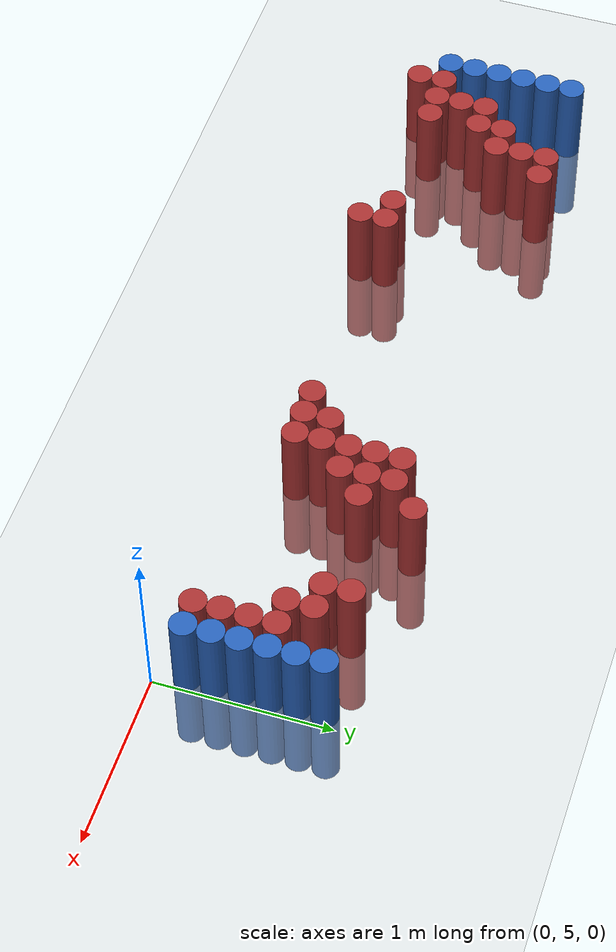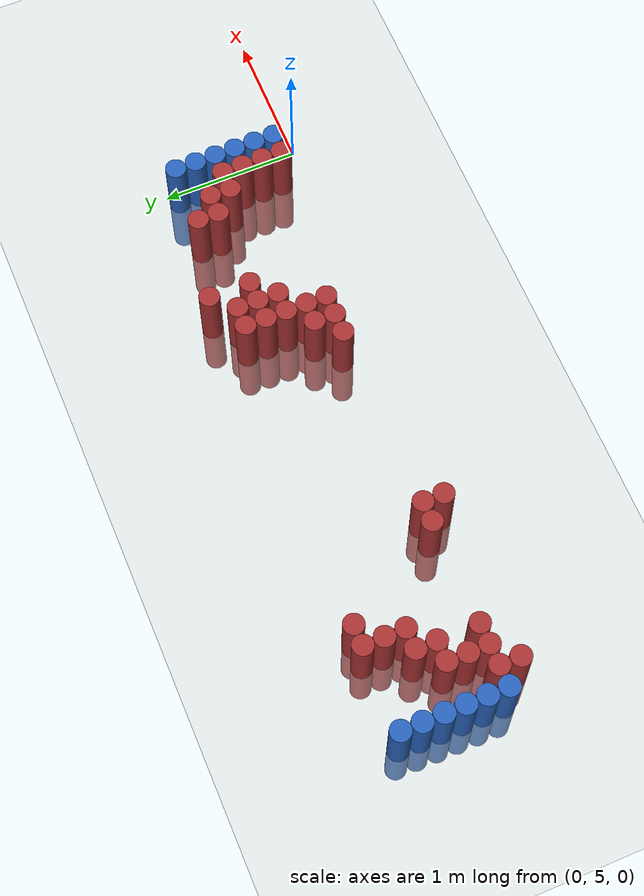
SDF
<sdf version="1.6">
 <world name="default">
  <model name="ground_plane">
   <static>1</static>
   <link name="link">
    <collision name="collision">
     <geometry><plane><normal>0 0 1</normal><size>100 100</size></plane></geometry>
     <surface><friction><ode><mu>100</mu><mu2>50</mu2></ode></friction></surface>
    </collision>
    <visual name="visual">
     <cast_shadows>0</cast_shadows>
     <geometry><plane><normal>0 0 1</normal><size>100 100</size></plane></geometry>
     <material>
      <script><uri>file://media/materials/scripts/gazebo.material</uri><name>Gazebo/Grey</name></script>
     </material>
    </visual>
   </link>
  </model>
  <model name="unit_cylinder_97">
   <static>1</static>
   <pose>-4.425000 5.325000 0.000000 0.000000 0.000000 0.000000</pose>
   <link name="link">
    <inertial>
     <mass>1</mass>
     <inertia><ixx>0.145833</ixx><ixy>0</ixy><ixz>0</ixz><iyy>0.145833</iyy><iyz>0</iyz><izz>0.125</izz></inertia>
    </inertial>
    <collision name="collision">
     <geometry><cylinder><radius>0.075000</radius><length>1</length></cylinder></geometry>
    </collision>
    <visual name="visual">
     <geometry><cylinder><radius>0.075000</radius><length>1</length></cylinder></geometry>
     <material>
      <ambient>0.152000 0.379000 0.720000 1</ambient>
      <diffuse>0.152000 0.379000 0.720000 1</diffuse>
     </material>
     <material>
      <script><name>Gazebo/Grey</name><uri>file://media/materials/scripts/gazebo.material</uri></script>
     </material>
    </visual>
   </link>
  </model>
  <model name="unit_cylinder_98">
   <static>1</static>
   <pose>-4.425000 5.475000 0.000000 0.000000 0.000000 0.000000</pose>
   <link name="link">
    <inertial>
     <mass>1</mass>
     <inertia><ixx>0.145833</ixx><ixy>0</ixy><ixz>0</ixz><iyy>0.145833</iyy><iyz>0</iyz><izz>0.125</izz></inertia>
    </inertial>
    <collision name="collision">
     <geometry><cylinder><radius>0.075000</radius><length>1</length></cylinder></geometry>
    </collision>
    <visual name="visual">
     <geometry><cylinder><radius>0.075000</radius><length>1</length></cylinder></geometry>
     <material>
      <ambient>0.152000 0.379000 0.720000 1</ambient>
      <diffuse>0.152000 0.379000 0.720000 1</diffuse>
     </material>
     <material>
      <script><name>Gazebo/Grey</name><uri>file://media/materials/scripts/gazebo.material</uri></script>
     </material>
    </visual>
   </link>
  </model>
  <model name="unit_cylinder_99">
   <static>1</static>
   <pose>-4.425000 5.625000 0.000000 0.000000 0.000000 0.000000</pose>
   <link name="link">
    <inertial>
     <mass>1</mass>
     <inertia><ixx>0.145833</ixx><ixy>0</ixy><ixz>0</ixz><iyy>0.145833</iyy><iyz>0</iyz><izz>0.125</izz></inertia>
    </inertial>
    <collision name="collision">
     <geometry><cylinder><radius>0.075000</radius><length>1</length></cylinder></geometry>
    </collision>
    <visual name="visual">
     <geometry><cylinder><radius>0.075000</radius><length>1</length></cylinder></geometry>
     <material>
      <ambient>0.152000 0.379000 0.720000 1</ambient>
      <diffuse>0.152000 0.379000 0.720000 1</diffuse>
     </material>
     <material>
      <script><name>Gazebo/Grey</name><uri>file://media/materials/scripts/gazebo.material</uri></script>
     </material>
    </visual>
   </link>
  </model>
  <model name="unit_cylinder_100">
   <static>1</static>
   <pose>-4.425000 5.775000 0.000000 0.000000 0.000000 0.000000</pose>
   <link name="link">
    <inertial>
     <mass>1</mass>
     <inertia><ixx>0.145833</ixx><ixy>0</ixy><ixz>0</ixz><iyy>0.145833</iyy><iyz>0</iyz><izz>0.125</izz></inertia>
    </inertial>
    <collision name="collision">
     <geometry><cylinder><radius>0.075000</radius><length>1</length></cylinder></geometry>
    </collision>
    <visual name="visual">
     <geometry><cylinder><radius>0.075000</radius><length>1</length></cylinder></geometry>
     <material>
      <ambient>0.152000 0.379000 0.720000 1</ambient>
      <diffuse>0.152000 0.379000 0.720000 1</diffuse>
     </material>
     <material>
      <script><name>Gazebo/Grey</name><uri>file://media/materials/scripts/gazebo.material</uri></script>
     </material>
    </visual>
   </link>
  </model>
  <model name="unit_cylinder_101">
   <static>1</static>
   <pose>-4.425000 5.925000 0.000000 0.000000 0.000000 0.000000</pose>
   <link name="link">
    <inertial>
     <mass>1</mass>
     <inertia><ixx>0.145833</ixx><ixy>0</ixy><ixz>0</ixz><iyy>0.145833</iyy><iyz>0</iyz><izz>0.125</izz></inertia>
    </inertial>
    <collision name="collision">
     <geometry><cylinder><radius>0.075000</radius><length>1</length></cylinder></geometry>
    </collision>
    <visual name="visual">
     <geometry><cylinder><radius>0.075000</radius><length>1</length></cylinder></geometry>
     <material>
      <ambient>0.152000 0.379000 0.720000 1</ambient>
      <diffuse>0.152000 0.379000 0.720000 1</diffuse>
     </material>
     <material>
      <script><name>Gazebo/Grey</name><uri>file://media/materials/scripts/gazebo.material</uri></script>
     </material>
    </visual>
   </link>
  </model>
  <model name="unit_cylinder_102">
   <static>1</static>
   <pose>-4.425000 6.075000 0.000000 0.000000 0.000000 0.000000</pose>
   <link name="link">
    <inertial>
     <mass>1</mass>
     <inertia><ixx>0.145833</ixx><ixy>0</ixy><ixz>0</ixz><iyy>0.145833</iyy><iyz>0</iyz><izz>0.125</izz></inertia>
    </inertial>
    <collision name="collision">
     <geometry><cylinder><radius>0.075000</radius><length>1</length></cylinder></geometry>
    </collision>
    <visual name="visual">
     <geometry><cylinder><radius>0.075000</radius><length>1</length></cylinder></geometry>
     <material>
      <ambient>0.152000 0.379000 0.720000 1</ambient>
      <diffuse>0.152000 0.379000 0.720000 1</diffuse>
     </material>
     <material>
      <script><name>Gazebo/Grey</name><uri>file://media/materials/scripts/gazebo.material</uri></script>
     </material>
    </visual>
   </link>
  </model>
  <model name="unit_cylinder_126">
   <static>1</static>
   <pose>-4.275000 5.175000 0.000000 0.000000 0.000000 0.000000</pose>
   <link name="link">
    <inertial>
     <mass>1</mass>
     <inertia><ixx>0.145833</ixx><ixy>0</ixy><ixz>0</ixz><iyy>0.145833</iyy><iyz>0</iyz><izz>0.125</izz></inertia>
    </inertial>
    <collision name="collision">
     <geometry><cylinder><radius>0.075000</radius><length>1</length></cylinder></geometry>
    </collision>
    <visual name="visual">
     <geometry><cylinder><radius>0.075000</radius><length>1</length></cylinder></geometry>
     <material>
      <ambient>0.648000 0.192000 0.192000 1</ambient>
      <diffuse>0.648000 0.192000 0.192000 1</diffuse>
     </material>
     <material>
      <script><name>Gazebo/Grey</name><uri>file://media/materials/scripts/gazebo.material</uri></script>
     </material>
    </visual>
   </link>
  </model>
  <model name="unit_cylinder_127">
   <static>1</static>
   <pose>-4.275000 5.325000 0.000000 0.000000 0.000000 0.000000</pose>
   <link name="link">
    <inertial>
     <mass>1</mass>
     <inertia><ixx>0.145833</ixx><ixy>0</ixy><ixz>0</ixz><iyy>0.145833</iyy><iyz>0</iyz><izz>0.125</izz></inertia>
    </inertial>
    <collision name="collision">
     <geometry><cylinder><radius>0.075000</radius><length>1</length></cylinder></geometry>
    </collision>
    <visual name="visual">
     <geometry><cylinder><radius>0.075000</radius><length>1</length></cylinder></geometry>
     <material>
      <ambient>0.648000 0.192000 0.192000 1</ambient>
      <diffuse>0.648000 0.192000 0.192000 1</diffuse>
     </material>
     <material>
      <script><name>Gazebo/Grey</name><uri>file://media/materials/scripts/gazebo.material</uri></script>
     </material>
    </visual>
   </link>
  </model>
  <model name="unit_cylinder_135">
   <static>1</static>
   <pose>-4.125000 5.325000 0.000000 0.000000 0.000000 0.000000</pose>
   <link name="link">
    <inertial>
     <mass>1</mass>
     <inertia><ixx>0.145833</ixx><ixy>0</ixy><ixz>0</ixz><iyy>0.145833</iyy><iyz>0</iyz><izz>0.125</izz></inertia>
    </inertial>
    <collision name="collision">
     <geometry><cylinder><radius>0.075000</radius><length>1</length></cylinder></geometry>
    </collision>
    <visual name="visual">
     <geometry><cylinder><radius>0.075000</radius><length>1</length></cylinder></geometry>
     <material>
      <ambient>0.648000 0.192000 0.192000 1</ambient>
      <diffuse>0.648000 0.192000 0.192000 1</diffuse>
     </material>
     <material>
      <script><name>Gazebo/Grey</name><uri>file://media/materials/scripts/gazebo.material</uri></script>
     </material>
    </visual>
   </link>
  </model>
  <model name="unit_cylinder_136">
   <static>1</static>
   <pose>-4.125000 5.475000 0.000000 0.000000 0.000000 0.000000</pose>
   <link name="link">
    <inertial>
     <mass>1</mass>
     <inertia><ixx>0.145833</ixx><ixy>0</ixy><ixz>0</ixz><iyy>0.145833</iyy><iyz>0</iyz><izz>0.125</izz></inertia>
    </inertial>
    <collision name="collision">
     <geometry><cylinder><radius>0.075000</radius><length>1</length></cylinder></geometry>
    </collision>
    <visual name="visual">
     <geometry><cylinder><radius>0.075000</radius><length>1</length></cylinder></geometry>
     <material>
      <ambient>0.648000 0.192000 0.192000 1</ambient>
      <diffuse>0.648000 0.192000 0.192000 1</diffuse>
     </material>
     <material>
      <script><name>Gazebo/Grey</name><uri>file://media/materials/scripts/gazebo.material</uri></script>
     </material>
    </visual>
   </link>
  </model>
  <model name="unit_cylinder_137">
   <static>1</static>
   <pose>-4.125000 5.625000 0.000000 0.000000 0.000000 0.000000</pose>
   <link name="link">
    <inertial>
     <mass>1</mass>
     <inertia><ixx>0.145833</ixx><ixy>0</ixy><ixz>0</ixz><iyy>0.145833</iyy><iyz>0</iyz><izz>0.125</izz></inertia>
    </inertial>
    <collision name="collision">
     <geometry><cylinder><radius>0.075000</radius><length>1</length></cylinder></geometry>
    </collision>
    <visual name="visual">
     <geometry><cylinder><radius>0.075000</radius><length>1</length></cylinder></geometry>
     <material>
      <ambient>0.648000 0.192000 0.192000 1</ambient>
      <diffuse>0.648000 0.192000 0.192000 1</diffuse>
     </material>
     <material>
      <script><name>Gazebo/Grey</name><uri>file://media/materials/scripts/gazebo.material</uri></script>
     </material>
    </visual>
   </link>
  </model>
  <model name="unit_cylinder_142">
   <static>1</static>
   <pose>-3.975000 5.325000 0.000000 0.000000 0.000000 0.000000</pose>
   <link name="link">
    <inertial>
     <mass>1</mass>
     <inertia><ixx>0.145833</ixx><ixy>0</ixy><ixz>0</ixz><iyy>0.145833</iyy><iyz>0</iyz><izz>0.125</izz></inertia>
    </inertial>
    <collision name="collision">
     <geometry><cylinder><radius>0.075000</radius><length>1</length></cylinder></geometry>
    </collision>
    <visual name="visual">
     <geometry><cylinder><radius>0.075000</radius><length>1</length></cylinder></geometry>
     <material>
      <ambient>0.648000 0.192000 0.192000 1</ambient>
      <diffuse>0.648000 0.192000 0.192000 1</diffuse>
     </material>
     <material>
      <script><name>Gazebo/Grey</name><uri>file://media/materials/scripts/gazebo.material</uri></script>
     </material>
    </visual>
   </link>
  </model>
  <model name="unit_cylinder_143">
   <static>1</static>
   <pose>-3.975000 5.625000 0.000000 0.000000 0.000000 0.000000</pose>
   <link name="link">
    <inertial>
     <mass>1</mass>
     <inertia><ixx>0.145833</ixx><ixy>0</ixy><ixz>0</ixz><iyy>0.145833</iyy><iyz>0</iyz><izz>0.125</izz></inertia>
    </inertial>
    <collision name="collision">
     <geometry><cylinder><radius>0.075000</radius><length>1</length></cylinder></geometry>
    </collision>
    <visual name="visual">
     <geometry><cylinder><radius>0.075000</radius><length>1</length></cylinder></geometry>
     <material>
      <ambient>0.648000 0.192000 0.192000 1</ambient>
      <diffuse>0.648000 0.192000 0.192000 1</diffuse>
     </material>
     <material>
      <script><name>Gazebo/Grey</name><uri>file://media/materials/scripts/gazebo.material</uri></script>
     </material>
    </visual>
   </link>
  </model>
  <model name="unit_cylinder_144">
   <static>1</static>
   <pose>-3.975000 5.775000 0.000000 0.000000 0.000000 0.000000</pose>
   <link name="link">
    <inertial>
     <mass>1</mass>
     <inertia><ixx>0.145833</ixx><ixy>0</ixy><ixz>0</ixz><iyy>0.145833</iyy><iyz>0</iyz><izz>0.125</izz></inertia>
    </inertial>
    <collision name="collision">
     <geometry><cylinder><radius>0.075000</radius><length>1</length></cylinder></geometry>
    </collision>
    <visual name="visual">
     <geometry><cylinder><radius>0.075000</radius><length>1</length></cylinder></geometry>
     <material>
      <ambient>0.648000 0.192000 0.192000 1</ambient>
      <diffuse>0.648000 0.192000 0.192000 1</diffuse>
     </material>
     <material>
      <script><name>Gazebo/Grey</name><uri>file://media/materials/scripts/gazebo.material</uri></script>
     </material>
    </visual>
   </link>
  </model>
  <model name="unit_cylinder_151">
   <static>1</static>
   <pose>-3.825000 5.775000 0.000000 0.000000 0.000000 0.000000</pose>
   <link name="link">
    <inertial>
     <mass>1</mass>
     <inertia><ixx>0.145833</ixx><ixy>0</ixy><ixz>0</ixz><iyy>0.145833</iyy><iyz>0</iyz><izz>0.125</izz></inertia>
    </inertial>
    <collision name="collision">
     <geometry><cylinder><radius>0.075000</radius><length>1</length></cylinder></geometry>
    </collision>
    <visual name="visual">
     <geometry><cylinder><radius>0.075000</radius><length>1</length></cylinder></geometry>
     <material>
      <ambient>0.648000 0.192000 0.192000 1</ambient>
      <diffuse>0.648000 0.192000 0.192000 1</diffuse>
     </material>
     <material>
      <script><name>Gazebo/Grey</name><uri>file://media/materials/scripts/gazebo.material</uri></script>
     </material>
    </visual>
   </link>
  </model>
  <model name="unit_cylinder_152">
   <static>1</static>
   <pose>-3.825000 5.925000 0.000000 0.000000 0.000000 0.000000</pose>
   <link name="link">
    <inertial>
     <mass>1</mass>
     <inertia><ixx>0.145833</ixx><ixy>0</ixy><ixz>0</ixz><iyy>0.145833</iyy><iyz>0</iyz><izz>0.125</izz></inertia>
    </inertial>
    <collision name="collision">
     <geometry><cylinder><radius>0.075000</radius><length>1</length></cylinder></geometry>
    </collision>
    <visual name="visual">
     <geometry><cylinder><radius>0.075000</radius><length>1</length></cylinder></geometry>
     <material>
      <ambient>0.648000 0.192000 0.192000 1</ambient>
      <diffuse>0.648000 0.192000 0.192000 1</diffuse>
     </material>
     <material>
      <script><name>Gazebo/Grey</name><uri>file://media/materials/scripts/gazebo.material</uri></script>
     </material>
    </visual>
   </link>
  </model>
  <model name="unit_cylinder_153">
   <static>1</static>
   <pose>-3.825000 6.075000 0.000000 0.000000 0.000000 0.000000</pose>
   <link name="link">
    <inertial>
     <mass>1</mass>
     <inertia><ixx>0.145833</ixx><ixy>0</ixy><ixz>0</ixz><iyy>0.145833</iyy><iyz>0</iyz><izz>0.125</izz></inertia>
    </inertial>
    <collision name="collision">
     <geometry><cylinder><radius>0.075000</radius><length>1</length></cylinder></geometry>
    </collision>
    <visual name="visual">
     <geometry><cylinder><radius>0.075000</radius><length>1</length></cylinder></geometry>
     <material>
      <ambient>0.648000 0.192000 0.192000 1</ambient>
      <diffuse>0.648000 0.192000 0.192000 1</diffuse>
     </material>
     <material>
      <script><name>Gazebo/Grey</name><uri>file://media/materials/scripts/gazebo.material</uri></script>
     </material>
    </visual>
   </link>
  </model>
  <model name="unit_cylinder_164">
   <static>1</static>
   <pose>-3.675000 6.075000 0.000000 0.000000 0.000000 0.000000</pose>
   <link name="link">
    <inertial>
     <mass>1</mass>
     <inertia><ixx>0.145833</ixx><ixy>0</ixy><ixz>0</ixz><iyy>0.145833</iyy><iyz>0</iyz><izz>0.125</izz></inertia>
    </inertial>
    <collision name="collision">
     <geometry><cylinder><radius>0.075000</radius><length>1</length></cylinder></geometry>
    </collision>
    <visual name="visual">
     <geometry><cylinder><radius>0.075000</radius><length>1</length></cylinder></geometry>
     <material>
      <ambient>0.648000 0.192000 0.192000 1</ambient>
      <diffuse>0.648000 0.192000 0.192000 1</diffuse>
     </material>
     <material>
      <script><name>Gazebo/Grey</name><uri>file://media/materials/scripts/gazebo.material</uri></script>
     </material>
    </visual>
   </link>
  </model>
  <model name="unit_cylinder_177">
   <static>1</static>
   <pose>-3.225000 5.325000 0.000000 0.000000 0.000000 0.000000</pose>
   <link name="link">
    <inertial>
     <mass>1</mass>
     <inertia><ixx>0.145833</ixx><ixy>0</ixy><ixz>0</ixz><iyy>0.145833</iyy><iyz>0</iyz><izz>0.125</izz></inertia>
    </inertial>
    <collision name="collision">
     <geometry><cylinder><radius>0.075000</radius><length>1</length></cylinder></geometry>
    </collision>
    <visual name="visual">
     <geometry><cylinder><radius>0.075000</radius><length>1</length></cylinder></geometry>
     <material>
      <ambient>0.648000 0.192000 0.192000 1</ambient>
      <diffuse>0.648000 0.192000 0.192000 1</diffuse>
     </material>
     <material>
      <script><name>Gazebo/Grey</name><uri>file://media/materials/scripts/gazebo.material</uri></script>
     </material>
    </visual>
   </link>
  </model>
  <model name="unit_cylinder_179">
   <static>1</static>
   <pose>-3.075000 5.175000 0.000000 0.000000 0.000000 0.000000</pose>
   <link name="link">
    <inertial>
     <mass>1</mass>
     <inertia><ixx>0.145833</ixx><ixy>0</ixy><ixz>0</ixz><iyy>0.145833</iyy><iyz>0</iyz><izz>0.125</izz></inertia>
    </inertial>
    <collision name="collision">
     <geometry><cylinder><radius>0.075000</radius><length>1</length></cylinder></geometry>
    </collision>
    <visual name="visual">
     <geometry><cylinder><radius>0.075000</radius><length>1</length></cylinder></geometry>
     <material>
      <ambient>0.648000 0.192000 0.192000 1</ambient>
      <diffuse>0.648000 0.192000 0.192000 1</diffuse>
     </material>
     <material>
      <script><name>Gazebo/Grey</name><uri>file://media/materials/scripts/gazebo.material</uri></script>
     </material>
    </visual>
   </link>
  </model>
  <model name="unit_cylinder_180">
   <static>1</static>
   <pose>-3.075000 5.325000 0.000000 0.000000 0.000000 0.000000</pose>
   <link name="link">
    <inertial>
     <mass>1</mass>
     <inertia><ixx>0.145833</ixx><ixy>0</ixy><ixz>0</ixz><iyy>0.145833</iyy><iyz>0</iyz><izz>0.125</izz></inertia>
    </inertial>
    <collision name="collision">
     <geometry><cylinder><radius>0.075000</radius><length>1</length></cylinder></geometry>
    </collision>
    <visual name="visual">
     <geometry><cylinder><radius>0.075000</radius><length>1</length></cylinder></geometry>
     <material>
      <ambient>0.648000 0.192000 0.192000 1</ambient>
      <diffuse>0.648000 0.192000 0.192000 1</diffuse>
     </material>
     <material>
      <script><name>Gazebo/Grey</name><uri>file://media/materials/scripts/gazebo.material</uri></script>
     </material>
    </visual>
   </link>
  </model>
  <model name="unit_cylinder_200">
   <static>1</static>
   <pose>-1.725000 5.325000 0.000000 0.000000 0.000000 0.000000</pose>
   <link name="link">
    <inertial>
     <mass>1</mass>
     <inertia><ixx>0.145833</ixx><ixy>0</ixy><ixz>0</ixz><iyy>0.145833</iyy><iyz>0</iyz><izz>0.125</izz></inertia>
    </inertial>
    <collision name="collision">
     <geometry><cylinder><radius>0.075000</radius><length>1</length></cylinder></geometry>
    </collision>
    <visual name="visual">
     <geometry><cylinder><radius>0.075000</radius><length>1</length></cylinder></geometry>
     <material>
      <ambient>0.648000 0.192000 0.192000 1</ambient>
      <diffuse>0.648000 0.192000 0.192000 1</diffuse>
     </material>
     <material>
      <script><name>Gazebo/Grey</name><uri>file://media/materials/scripts/gazebo.material</uri></script>
     </material>
    </visual>
   </link>
  </model>
  <model name="unit_cylinder_211">
   <static>1</static>
   <pose>-1.575000 5.325000 0.000000 0.000000 0.000000 0.000000</pose>
   <link name="link">
    <inertial>
     <mass>1</mass>
     <inertia><ixx>0.145833</ixx><ixy>0</ixy><ixz>0</ixz><iyy>0.145833</iyy><iyz>0</iyz><izz>0.125</izz></inertia>
    </inertial>
    <collision name="collision">
     <geometry><cylinder><radius>0.075000</radius><length>1</length></cylinder></geometry>
    </collision>
    <visual name="visual">
     <geometry><cylinder><radius>0.075000</radius><length>1</length></cylinder></geometry>
     <material>
      <ambient>0.648000 0.192000 0.192000 1</ambient>
      <diffuse>0.648000 0.192000 0.192000 1</diffuse>
     </material>
     <material>
      <script><name>Gazebo/Grey</name><uri>file://media/materials/scripts/gazebo.material</uri></script>
     </material>
    </visual>
   </link>
  </model>
  <model name="unit_cylinder_212">
   <static>1</static>
   <pose>-1.575000 5.475000 0.000000 0.000000 0.000000 0.000000</pose>
   <link name="link">
    <inertial>
     <mass>1</mass>
     <inertia><ixx>0.145833</ixx><ixy>0</ixy><ixz>0</ixz><iyy>0.145833</iyy><iyz>0</iyz><izz>0.125</izz></inertia>
    </inertial>
    <collision name="collision">
     <geometry><cylinder><radius>0.075000</radius><length>1</length></cylinder></geometry>
    </collision>
    <visual name="visual">
     <geometry><cylinder><radius>0.075000</radius><length>1</length></cylinder></geometry>
     <material>
      <ambient>0.648000 0.192000 0.192000 1</ambient>
      <diffuse>0.648000 0.192000 0.192000 1</diffuse>
     </material>
     <material>
      <script><name>Gazebo/Grey</name><uri>file://media/materials/scripts/gazebo.material</uri></script>
     </material>
    </visual>
   </link>
  </model>
  <model name="unit_cylinder_217">
   <static>1</static>
   <pose>-1.425000 5.325000 0.000000 0.000000 0.000000 0.000000</pose>
   <link name="link">
    <inertial>
     <mass>1</mass>
     <inertia><ixx>0.145833</ixx><ixy>0</ixy><ixz>0</ixz><iyy>0.145833</iyy><iyz>0</iyz><izz>0.125</izz></inertia>
    </inertial>
    <collision name="collision">
     <geometry><cylinder><radius>0.075000</radius><length>1</length></cylinder></geometry>
    </collision>
    <visual name="visual">
     <geometry><cylinder><radius>0.075000</radius><length>1</length></cylinder></geometry>
     <material>
      <ambient>0.648000 0.192000 0.192000 1</ambient>
      <diffuse>0.648000 0.192000 0.192000 1</diffuse>
     </material>
     <material>
      <script><name>Gazebo/Grey</name><uri>file://media/materials/scripts/gazebo.material</uri></script>
     </material>
    </visual>
   </link>
  </model>
  <model name="unit_cylinder_218">
   <static>1</static>
   <pose>-1.425000 5.475000 0.000000 0.000000 0.000000 0.000000</pose>
   <link name="link">
    <inertial>
     <mass>1</mass>
     <inertia><ixx>0.145833</ixx><ixy>0</ixy><ixz>0</ixz><iyy>0.145833</iyy><iyz>0</iyz><izz>0.125</izz></inertia>
    </inertial>
    <collision name="collision">
     <geometry><cylinder><radius>0.075000</radius><length>1</length></cylinder></geometry>
    </collision>
    <visual name="visual">
     <geometry><cylinder><radius>0.075000</radius><length>1</length></cylinder></geometry>
     <material>
      <ambient>0.648000 0.192000 0.192000 1</ambient>
      <diffuse>0.648000 0.192000 0.192000 1</diffuse>
     </material>
     <material>
      <script><name>Gazebo/Grey</name><uri>file://media/materials/scripts/gazebo.material</uri></script>
     </material>
    </visual>
   </link>
  </model>
  <model name="unit_cylinder_219">
   <static>1</static>
   <pose>-1.425000 5.625000 0.000000 0.000000 0.000000 0.000000</pose>
   <link name="link">
    <inertial>
     <mass>1</mass>
     <inertia><ixx>0.145833</ixx><ixy>0</ixy><ixz>0</ixz><iyy>0.145833</iyy><iyz>0</iyz><izz>0.125</izz></inertia>
    </inertial>
    <collision name="collision">
     <geometry><cylinder><radius>0.075000</radius><length>1</length></cylinder></geometry>
    </collision>
    <visual name="visual">
     <geometry><cylinder><radius>0.075000</radius><length>1</length></cylinder></geometry>
     <material>
      <ambient>0.648000 0.192000 0.192000 1</ambient>
      <diffuse>0.648000 0.192000 0.192000 1</diffuse>
     </material>
     <material>
      <script><name>Gazebo/Grey</name><uri>file://media/materials/scripts/gazebo.material</uri></script>
     </material>
    </visual>
   </link>
  </model>
  <model name="unit_cylinder_220">
   <static>1</static>
   <pose>-1.425000 5.775000 0.000000 0.000000 0.000000 0.000000</pose>
   <link name="link">
    <inertial>
     <mass>1</mass>
     <inertia><ixx>0.145833</ixx><ixy>0</ixy><ixz>0</ixz><iyy>0.145833</iyy><iyz>0</iyz><izz>0.125</izz></inertia>
    </inertial>
    <collision name="collision">
     <geometry><cylinder><radius>0.075000</radius><length>1</length></cylinder></geometry>
    </collision>
    <visual name="visual">
     <geometry><cylinder><radius>0.075000</radius><length>1</length></cylinder></geometry>
     <material>
      <ambient>0.648000 0.192000 0.192000 1</ambient>
      <diffuse>0.648000 0.192000 0.192000 1</diffuse>
     </material>
     <material>
      <script><name>Gazebo/Grey</name><uri>file://media/materials/scripts/gazebo.material</uri></script>
     </material>
    </visual>
   </link>
  </model>
  <model name="unit_cylinder_221">
   <static>1</static>
   <pose>-1.425000 5.925000 0.000000 0.000000 0.000000 0.000000</pose>
   <link name="link">
    <inertial>
     <mass>1</mass>
     <inertia><ixx>0.145833</ixx><ixy>0</ixy><ixz>0</ixz><iyy>0.145833</iyy><iyz>0</iyz><izz>0.125</izz></inertia>
    </inertial>
    <collision name="collision">
     <geometry><cylinder><radius>0.075000</radius><length>1</length></cylinder></geometry>
    </collision>
    <visual name="visual">
     <geometry><cylinder><radius>0.075000</radius><length>1</length></cylinder></geometry>
     <material>
      <ambient>0.648000 0.192000 0.192000 1</ambient>
      <diffuse>0.648000 0.192000 0.192000 1</diffuse>
     </material>
     <material>
      <script><name>Gazebo/Grey</name><uri>file://media/materials/scripts/gazebo.material</uri></script>
     </material>
    </visual>
   </link>
  </model>
  <model name="unit_cylinder_226">
   <static>1</static>
   <pose>-1.275000 5.625000 0.000000 0.000000 0.000000 0.000000</pose>
   <link name="link">
    <inertial>
     <mass>1</mass>
     <inertia><ixx>0.145833</ixx><ixy>0</ixy><ixz>0</ixz><iyy>0.145833</iyy><iyz>0</iyz><izz>0.125</izz></inertia>
    </inertial>
    <collision name="collision">
     <geometry><cylinder><radius>0.075000</radius><length>1</length></cylinder></geometry>
    </collision>
    <visual name="visual">
     <geometry><cylinder><radius>0.075000</radius><length>1</length></cylinder></geometry>
     <material>
      <ambient>0.648000 0.192000 0.192000 1</ambient>
      <diffuse>0.648000 0.192000 0.192000 1</diffuse>
     </material>
     <material>
      <script><name>Gazebo/Grey</name><uri>file://media/materials/scripts/gazebo.material</uri></script>
     </material>
    </visual>
   </link>
  </model>
  <model name="unit_cylinder_227">
   <static>1</static>
   <pose>-1.275000 5.775000 0.000000 0.000000 0.000000 0.000000</pose>
   <link name="link">
    <inertial>
     <mass>1</mass>
     <inertia><ixx>0.145833</ixx><ixy>0</ixy><ixz>0</ixz><iyy>0.145833</iyy><iyz>0</iyz><izz>0.125</izz></inertia>
    </inertial>
    <collision name="collision">
     <geometry><cylinder><radius>0.075000</radius><length>1</length></cylinder></geometry>
    </collision>
    <visual name="visual">
     <geometry><cylinder><radius>0.075000</radius><length>1</length></cylinder></geometry>
     <material>
      <ambient>0.648000 0.192000 0.192000 1</ambient>
      <diffuse>0.648000 0.192000 0.192000 1</diffuse>
     </material>
     <material>
      <script><name>Gazebo/Grey</name><uri>file://media/materials/scripts/gazebo.material</uri></script>
     </material>
    </visual>
   </link>
  </model>
  <model name="unit_cylinder_228">
   <static>1</static>
   <pose>-1.275000 5.925000 0.000000 0.000000 0.000000 0.000000</pose>
   <link name="link">
    <inertial>
     <mass>1</mass>
     <inertia><ixx>0.145833</ixx><ixy>0</ixy><ixz>0</ixz><iyy>0.145833</iyy><iyz>0</iyz><izz>0.125</izz></inertia>
    </inertial>
    <collision name="collision">
     <geometry><cylinder><radius>0.075000</radius><length>1</length></cylinder></geometry>
    </collision>
    <visual name="visual">
     <geometry><cylinder><radius>0.075000</radius><length>1</length></cylinder></geometry>
     <material>
      <ambient>0.648000 0.192000 0.192000 1</ambient>
      <diffuse>0.648000 0.192000 0.192000 1</diffuse>
     </material>
     <material>
      <script><name>Gazebo/Grey</name><uri>file://media/materials/scripts/gazebo.material</uri></script>
     </material>
    </visual>
   </link>
  </model>
  <model name="unit_cylinder_236">
   <static>1</static>
   <pose>-1.125000 5.775000 0.000000 0.000000 0.000000 0.000000</pose>
   <link name="link">
    <inertial>
     <mass>1</mass>
     <inertia><ixx>0.145833</ixx><ixy>0</ixy><ixz>0</ixz><iyy>0.145833</iyy><iyz>0</iyz><izz>0.125</izz></inertia>
    </inertial>
    <collision name="collision">
     <geometry><cylinder><radius>0.075000</radius><length>1</length></cylinder></geometry>
    </collision>
    <visual name="visual">
     <geometry><cylinder><radius>0.075000</radius><length>1</length></cylinder></geometry>
     <material>
      <ambient>0.648000 0.192000 0.192000 1</ambient>
      <diffuse>0.648000 0.192000 0.192000 1</diffuse>
     </material>
     <material>
      <script><name>Gazebo/Grey</name><uri>file://media/materials/scripts/gazebo.material</uri></script>
     </material>
    </visual>
   </link>
  </model>
  <model name="unit_cylinder_237">
   <static>1</static>
   <pose>-1.125000 6.075000 0.000000 0.000000 0.000000 0.000000</pose>
   <link name="link">
    <inertial>
     <mass>1</mass>
     <inertia><ixx>0.145833</ixx><ixy>0</ixy><ixz>0</ixz><iyy>0.145833</iyy><iyz>0</iyz><izz>0.125</izz></inertia>
    </inertial>
    <collision name="collision">
     <geometry><cylinder><radius>0.075000</radius><length>1</length></cylinder></geometry>
    </collision>
    <visual name="visual">
     <geometry><cylinder><radius>0.075000</radius><length>1</length></cylinder></geometry>
     <material>
      <ambient>0.648000 0.192000 0.192000 1</ambient>
      <diffuse>0.648000 0.192000 0.192000 1</diffuse>
     </material>
     <material>
      <script><name>Gazebo/Grey</name><uri>file://media/materials/scripts/gazebo.material</uri></script>
     </material>
    </visual>
   </link>
  </model>
  <model name="unit_cylinder_269">
   <static>1</static>
   <pose>-0.525000 5.775000 0.000000 0.000000 0.000000 0.000000</pose>
   <link name="link">
    <inertial>
     <mass>1</mass>
     <inertia><ixx>0.145833</ixx><ixy>0</ixy><ixz>0</ixz><iyy>0.145833</iyy><iyz>0</iyz><izz>0.125</izz></inertia>
    </inertial>
    <collision name="collision">
     <geometry><cylinder><radius>0.075000</radius><length>1</length></cylinder></geometry>
    </collision>
    <visual name="visual">
     <geometry><cylinder><radius>0.075000</radius><length>1</length></cylinder></geometry>
     <material>
      <ambient>0.648000 0.192000 0.192000 1</ambient>
      <diffuse>0.648000 0.192000 0.192000 1</diffuse>
     </material>
     <material>
      <script><name>Gazebo/Grey</name><uri>file://media/materials/scripts/gazebo.material</uri></script>
     </material>
    </visual>
   </link>
  </model>
  <model name="unit_cylinder_270">
   <static>1</static>
   <pose>-0.525000 5.925000 0.000000 0.000000 0.000000 0.000000</pose>
   <link name="link">
    <inertial>
     <mass>1</mass>
     <inertia><ixx>0.145833</ixx><ixy>0</ixy><ixz>0</ixz><iyy>0.145833</iyy><iyz>0</iyz><izz>0.125</izz></inertia>
    </inertial>
    <collision name="collision">
     <geometry><cylinder><radius>0.075000</radius><length>1</length></cylinder></geometry>
    </collision>
    <visual name="visual">
     <geometry><cylinder><radius>0.075000</radius><length>1</length></cylinder></geometry>
     <material>
      <ambient>0.648000 0.192000 0.192000 1</ambient>
      <diffuse>0.648000 0.192000 0.192000 1</diffuse>
     </material>
     <material>
      <script><name>Gazebo/Grey</name><uri>file://media/materials/scripts/gazebo.material</uri></script>
     </material>
    </visual>
   </link>
  </model>
  <model name="unit_cylinder_278">
   <static>1</static>
   <pose>-0.375000 5.625000 0.000000 0.000000 0.000000 0.000000</pose>
   <link name="link">
    <inertial>
     <mass>1</mass>
     <inertia><ixx>0.145833</ixx><ixy>0</ixy><ixz>0</ixz><iyy>0.145833</iyy><iyz>0</iyz><izz>0.125</izz></inertia>
    </inertial>
    <collision name="collision">
     <geometry><cylinder><radius>0.075000</radius><length>1</length></cylinder></geometry>
    </collision>
    <visual name="visual">
     <geometry><cylinder><radius>0.075000</radius><length>1</length></cylinder></geometry>
     <material>
      <ambient>0.648000 0.192000 0.192000 1</ambient>
      <diffuse>0.648000 0.192000 0.192000 1</diffuse>
     </material>
     <material>
      <script><name>Gazebo/Grey</name><uri>file://media/materials/scripts/gazebo.material</uri></script>
     </material>
    </visual>
   </link>
  </model>
  <model name="unit_cylinder_279">
   <static>1</static>
   <pose>-0.375000 5.775000 0.000000 0.000000 0.000000 0.000000</pose>
   <link name="link">
    <inertial>
     <mass>1</mass>
     <inertia><ixx>0.145833</ixx><ixy>0</ixy><ixz>0</ixz><iyy>0.145833</iyy><iyz>0</iyz><izz>0.125</izz></inertia>
    </inertial>
    <collision name="collision">
     <geometry><cylinder><radius>0.075000</radius><length>1</length></cylinder></geometry>
    </collision>
    <visual name="visual">
     <geometry><cylinder><radius>0.075000</radius><length>1</length></cylinder></geometry>
     <material>
      <ambient>0.648000 0.192000 0.192000 1</ambient>
      <diffuse>0.648000 0.192000 0.192000 1</diffuse>
     </material>
     <material>
      <script><name>Gazebo/Grey</name><uri>file://media/materials/scripts/gazebo.material</uri></script>
     </material>
    </visual>
   </link>
  </model>
  <model name="unit_cylinder_293">
   <static>1</static>
   <pose>-0.225000 5.175000 0.000000 0.000000 0.000000 0.000000</pose>
   <link name="link">
    <inertial>
     <mass>1</mass>
     <inertia><ixx>0.145833</ixx><ixy>0</ixy><ixz>0</ixz><iyy>0.145833</iyy><iyz>0</iyz><izz>0.125</izz></inertia>
    </inertial>
    <collision name="collision">
     <geometry><cylinder><radius>0.075000</radius><length>1</length></cylinder></geometry>
    </collision>
    <visual name="visual">
     <geometry><cylinder><radius>0.075000</radius><length>1</length></cylinder></geometry>
     <material>
      <ambient>0.648000 0.192000 0.192000 1</ambient>
      <diffuse>0.648000 0.192000 0.192000 1</diffuse>
     </material>
     <material>
      <script><name>Gazebo/Grey</name><uri>file://media/materials/scripts/gazebo.material</uri></script>
     </material>
    </visual>
   </link>
  </model>
  <model name="unit_cylinder_294">
   <static>1</static>
   <pose>-0.225000 5.325000 0.000000 0.000000 0.000000 0.000000</pose>
   <link name="link">
    <inertial>
     <mass>1</mass>
     <inertia><ixx>0.145833</ixx><ixy>0</ixy><ixz>0</ixz><iyy>0.145833</iyy><iyz>0</iyz><izz>0.125</izz></inertia>
    </inertial>
    <collision name="collision">
     <geometry><cylinder><radius>0.075000</radius><length>1</length></cylinder></geometry>
    </collision>
    <visual name="visual">
     <geometry><cylinder><radius>0.075000</radius><length>1</length></cylinder></geometry>
     <material>
      <ambient>0.648000 0.192000 0.192000 1</ambient>
      <diffuse>0.648000 0.192000 0.192000 1</diffuse>
     </material>
     <material>
      <script><name>Gazebo/Grey</name><uri>file://media/materials/scripts/gazebo.material</uri></script>
     </material>
    </visual>
   </link>
  </model>
  <model name="unit_cylinder_295">
   <static>1</static>
   <pose>-0.225000 5.475000 0.000000 0.000000 0.000000 0.000000</pose>
   <link name="link">
    <inertial>
     <mass>1</mass>
     <inertia><ixx>0.145833</ixx><ixy>0</ixy><ixz>0</ixz><iyy>0.145833</iyy><iyz>0</iyz><izz>0.125</izz></inertia>
    </inertial>
    <collision name="collision">
     <geometry><cylinder><radius>0.075000</radius><length>1</length></cylinder></geometry>
    </collision>
    <visual name="visual">
     <geometry><cylinder><radius>0.075000</radius><length>1</length></cylinder></geometry>
     <material>
      <ambient>0.648000 0.192000 0.192000 1</ambient>
      <diffuse>0.648000 0.192000 0.192000 1</diffuse>
     </material>
     <material>
      <script><name>Gazebo/Grey</name><uri>file://media/materials/scripts/gazebo.material</uri></script>
     </material>
    </visual>
   </link>
  </model>
  <model name="unit_cylinder_296">
   <static>1</static>
   <pose>-0.225000 5.625000 0.000000 0.000000 0.000000 0.000000</pose>
   <link name="link">
    <inertial>
     <mass>1</mass>
     <inertia><ixx>0.145833</ixx><ixy>0</ixy><ixz>0</ixz><iyy>0.145833</iyy><iyz>0</iyz><izz>0.125</izz></inertia>
    </inertial>
    <collision name="collision">
     <geometry><cylinder><radius>0.075000</radius><length>1</length></cylinder></geometry>
    </collision>
    <visual name="visual">
     <geometry><cylinder><radius>0.075000</radius><length>1</length></cylinder></geometry>
     <material>
      <ambient>0.648000 0.192000 0.192000 1</ambient>
      <diffuse>0.648000 0.192000 0.192000 1</diffuse>
     </material>
     <material>
      <script><name>Gazebo/Grey</name><uri>file://media/materials/scripts/gazebo.material</uri></script>
     </material>
    </visual>
   </link>
  </model>
  <model name="unit_cylinder_307">
   <static>1</static>
   <pose>-0.075000 5.175000 0.000000 0.000000 0.000000 0.000000</pose>
   <link name="link">
    <inertial>
     <mass>1</mass>
     <inertia><ixx>0.145833</ixx><ixy>0</ixy><ixz>0</ixz><iyy>0.145833</iyy><iyz>0</iyz><izz>0.125</izz></inertia>
    </inertial>
    <collision name="collision">
     <geometry><cylinder><radius>0.075000</radius><length>1</length></cylinder></geometry>
    </collision>
    <visual name="visual">
     <geometry><cylinder><radius>0.075000</radius><length>1</length></cylinder></geometry>
     <material>
      <ambient>0.152000 0.379000 0.720000 1</ambient>
      <diffuse>0.152000 0.379000 0.720000 1</diffuse>
     </material>
     <material>
      <script><name>Gazebo/Grey</name><uri>file://media/materials/scripts/gazebo.material</uri></script>
     </material>
    </visual>
   </link>
  </model>
  <model name="unit_cylinder_308">
   <static>1</static>
   <pose>-0.075000 5.325000 0.000000 0.000000 0.000000 0.000000</pose>
   <link name="link">
    <inertial>
     <mass>1</mass>
     <inertia><ixx>0.145833</ixx><ixy>0</ixy><ixz>0</ixz><iyy>0.145833</iyy><iyz>0</iyz><izz>0.125</izz></inertia>
    </inertial>
    <collision name="collision">
     <geometry><cylinder><radius>0.075000</radius><length>1</length></cylinder></geometry>
    </collision>
    <visual name="visual">
     <geometry><cylinder><radius>0.075000</radius><length>1</length></cylinder></geometry>
     <material>
      <ambient>0.152000 0.379000 0.720000 1</ambient>
      <diffuse>0.152000 0.379000 0.720000 1</diffuse>
     </material>
     <material>
      <script><name>Gazebo/Grey</name><uri>file://media/materials/scripts/gazebo.material</uri></script>
     </material>
    </visual>
   </link>
  </model>
  <model name="unit_cylinder_309">
   <static>1</static>
   <pose>-0.075000 5.475000 0.000000 0.000000 0.000000 0.000000</pose>
   <link name="link">
    <inertial>
     <mass>1</mass>
     <inertia><ixx>0.145833</ixx><ixy>0</ixy><ixz>0</ixz><iyy>0.145833</iyy><iyz>0</iyz><izz>0.125</izz></inertia>
    </inertial>
    <collision name="collision">
     <geometry><cylinder><radius>0.075000</radius><length>1</length></cylinder></geometry>
    </collision>
    <visual name="visual">
     <geometry><cylinder><radius>0.075000</radius><length>1</length></cylinder></geometry>
     <material>
      <ambient>0.152000 0.379000 0.720000 1</ambient>
      <diffuse>0.152000 0.379000 0.720000 1</diffuse>
     </material>
     <material>
      <script><name>Gazebo/Grey</name><uri>file://media/materials/scripts/gazebo.material</uri></script>
     </material>
    </visual>
   </link>
  </model>
  <model name="unit_cylinder_310">
   <static>1</static>
   <pose>-0.075000 5.625000 0.000000 0.000000 0.000000 0.000000</pose>
   <link name="link">
    <inertial>
     <mass>1</mass>
     <inertia><ixx>0.145833</ixx><ixy>0</ixy><ixz>0</ixz><iyy>0.145833</iyy><iyz>0</iyz><izz>0.125</izz></inertia>
    </inertial>
    <collision name="collision">
     <geometry><cylinder><radius>0.075000</radius><length>1</length></cylinder></geometry>
    </collision>
    <visual name="visual">
     <geometry><cylinder><radius>0.075000</radius><length>1</length></cylinder></geometry>
     <material>
      <ambient>0.152000 0.379000 0.720000 1</ambient>
      <diffuse>0.152000 0.379000 0.720000 1</diffuse>
     </material>
     <material>
      <script><name>Gazebo/Grey</name><uri>file://media/materials/scripts/gazebo.material</uri></script>
     </material>
    </visual>
   </link>
  </model>
  <model name="unit_cylinder_311">
   <static>1</static>
   <pose>-0.075000 5.775000 0.000000 0.000000 0.000000 0.000000</pose>
   <link name="link">
    <inertial>
     <mass>1</mass>
     <inertia><ixx>0.145833</ixx><ixy>0</ixy><ixz>0</ixz><iyy>0.145833</iyy><iyz>0</iyz><izz>0.125</izz></inertia>
    </inertial>
    <collision name="collision">
     <geometry><cylinder><radius>0.075000</radius><length>1</length></cylinder></geometry>
    </collision>
    <visual name="visual">
     <geometry><cylinder><radius>0.075000</radius><length>1</length></cylinder></geometry>
     <material>
      <ambient>0.152000 0.379000 0.720000 1</ambient>
      <diffuse>0.152000 0.379000 0.720000 1</diffuse>
     </material>
     <material>
      <script><name>Gazebo/Grey</name><uri>file://media/materials/scripts/gazebo.material</uri></script>
     </material>
    </visual>
   </link>
  </model>
  <model name="unit_cylinder_312">
   <static>1</static>
   <pose>-0.075000 5.925000 0.000000 0.000000 0.000000 0.000000</pose>
   <link name="link">
    <inertial>
     <mass>1</mass>
     <inertia><ixx>0.145833</ixx><ixy>0</ixy><ixz>0</ixz><iyy>0.145833</iyy><iyz>0</iyz><izz>0.125</izz></inertia>
    </inertial>
    <collision name="collision">
     <geometry><cylinder><radius>0.075000</radius><length>1</length></cylinder></geometry>
    </collision>
    <visual name="visual">
     <geometry><cylinder><radius>0.075000</radius><length>1</length></cylinder></geometry>
     <material>
      <ambient>0.152000 0.379000 0.720000 1</ambient>
      <diffuse>0.152000 0.379000 0.720000 1</diffuse>
     </material>
     <material>
      <script><name>Gazebo/Grey</name><uri>file://media/materials/scripts/gazebo.material</uri></script>
     </material>
    </visual>
   </link>
  </model>
 </world>
</sdf>
